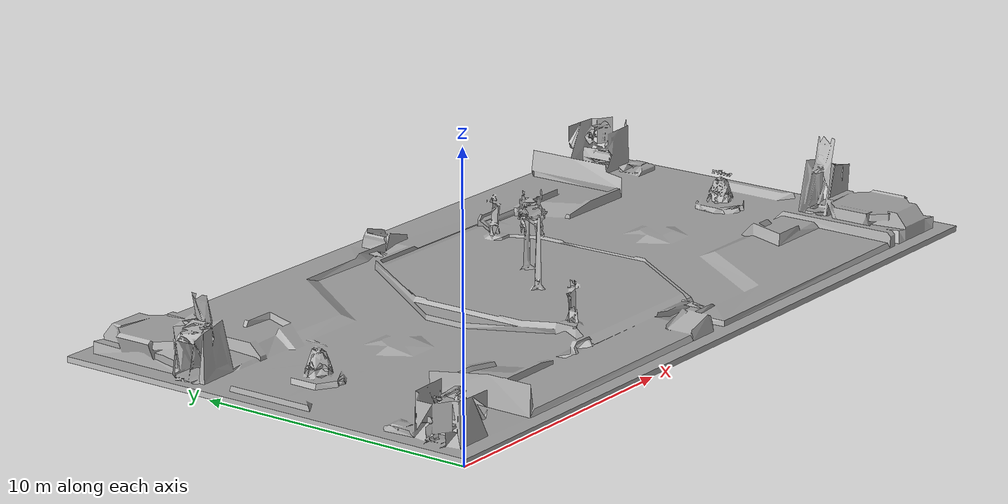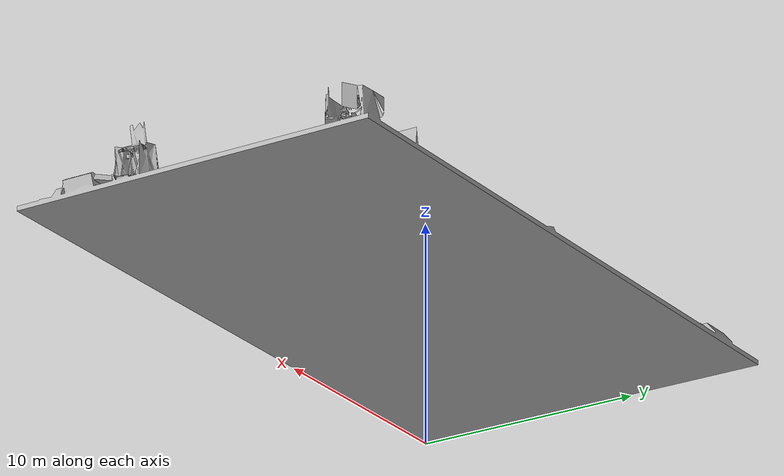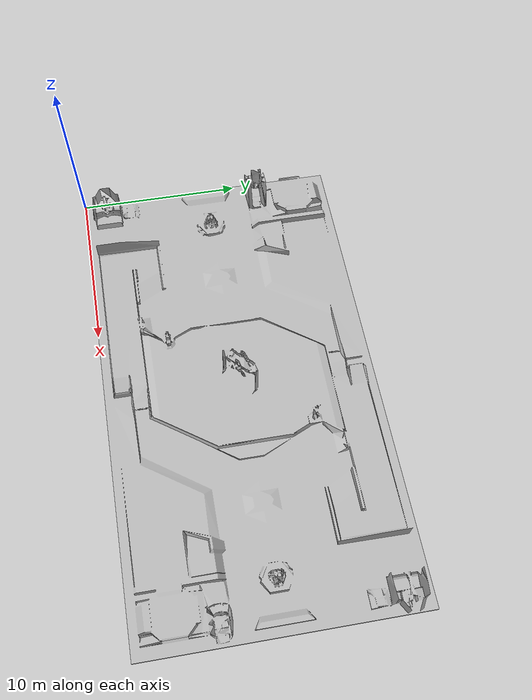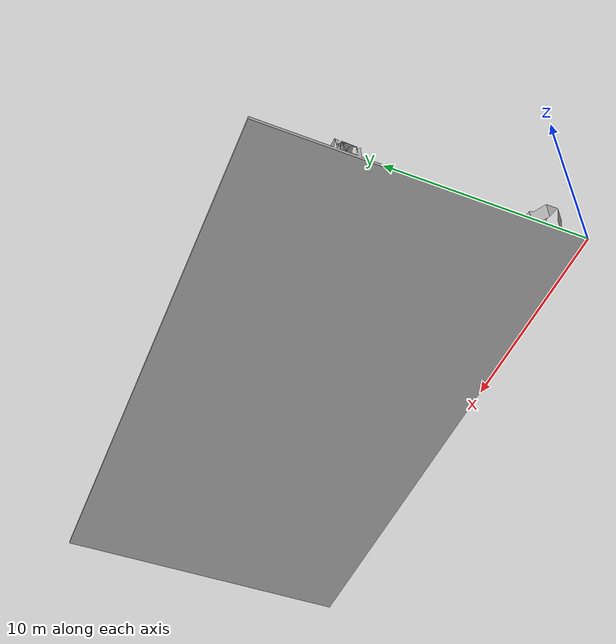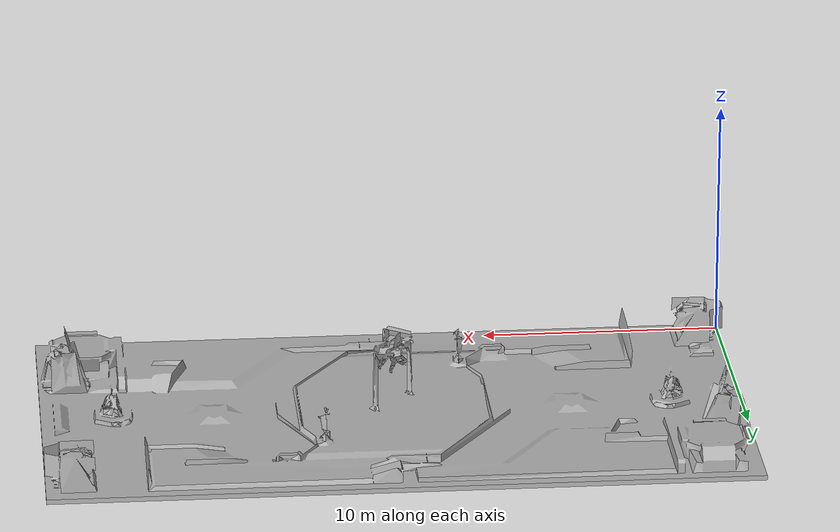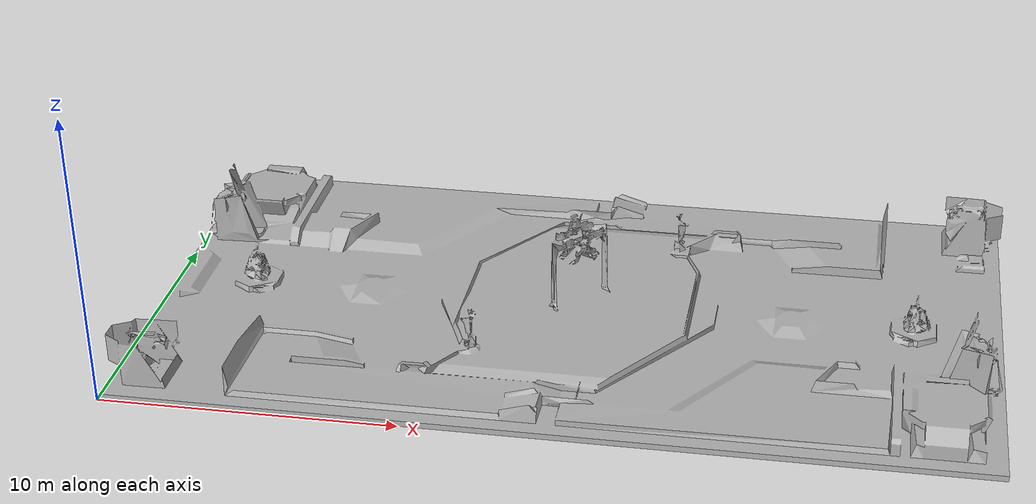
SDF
<?xml version="1.0"?>
<sdf version="1.6">
  <model name="rm_2026">

    <static>true</static>

    <link name="map_link">

      <inertial>
        <mass>1.0</mass>
        <inertia>
          <ixx>1.0</ixx>
          <ixy>0.0</ixy>
          <ixz>0.0</ixz>
          <iyy>1.0</iyy>
          <iyz>0.0</iyz>
          <izz>1.0</izz>
        </inertia>
      </inertial>

      <!-- ================= 可视化 ================= -->
      <visual name="visual">
        <!-- ✅ 向上抬 2cm -->
        <pose>0 0 0.02 0 0 0</pose>

        <cast_shadows>false</cast_shadows>
        <geometry>
          <mesh>
            <uri>model://rm_2026/meshes/rm_map_clean_try.stl</uri>
            <scale>0.001 0.001 0.001</scale>
          </mesh>
        </geometry>

        <material>
          <ambient>0.5 0.5 0.5 1</ambient>
          <diffuse>0.7 0.7 0.7 1</diffuse>
          <specular>0.1 0.1 0.1 1</specular>
        </material>
      </visual>

      <!-- ================= 碰撞体 ================= -->
      <collision name="collision">
        <!-- ⚠️ 必须和 visual 一样 -->
        <pose>0 0 0.02 0 0 0</pose>

        <geometry>
          <mesh>
            <uri>model://rm_2026/meshes/rm_map.stl</uri>
            <scale>0.001 0.001 0.001</scale>
          </mesh>
        </geometry>

        <surface>
          <friction>
            <ode>
              <mu>1.0</mu>
              <mu2>1.0</mu2>
            </ode>
          </friction>
          <contact>
            <ode>
              <kp>1e8</kp>
              <kd>1.0</kd>
              <min_depth>0.001</min_depth>
            </ode>
          </contact>
        </surface>
      </collision>

      <self_collide>false</self_collide>
      <gravity>false</gravity>
      <kinematic>false</kinematic>

    </link>
  </model>
</sdf>
